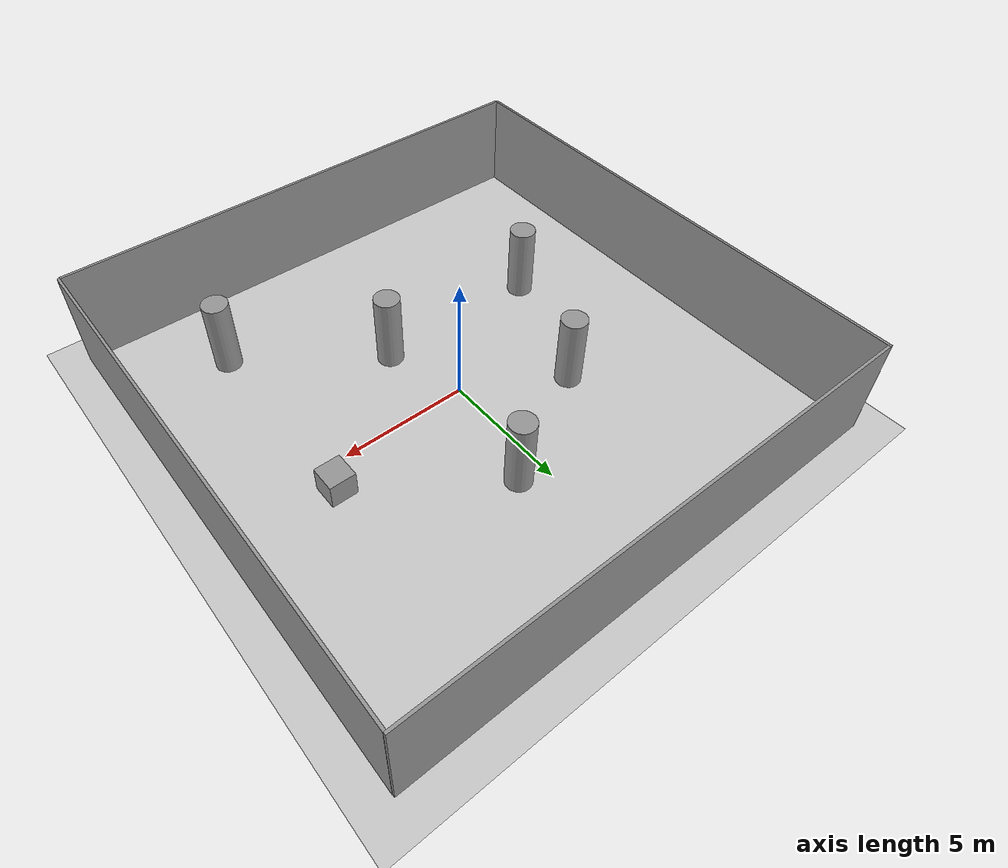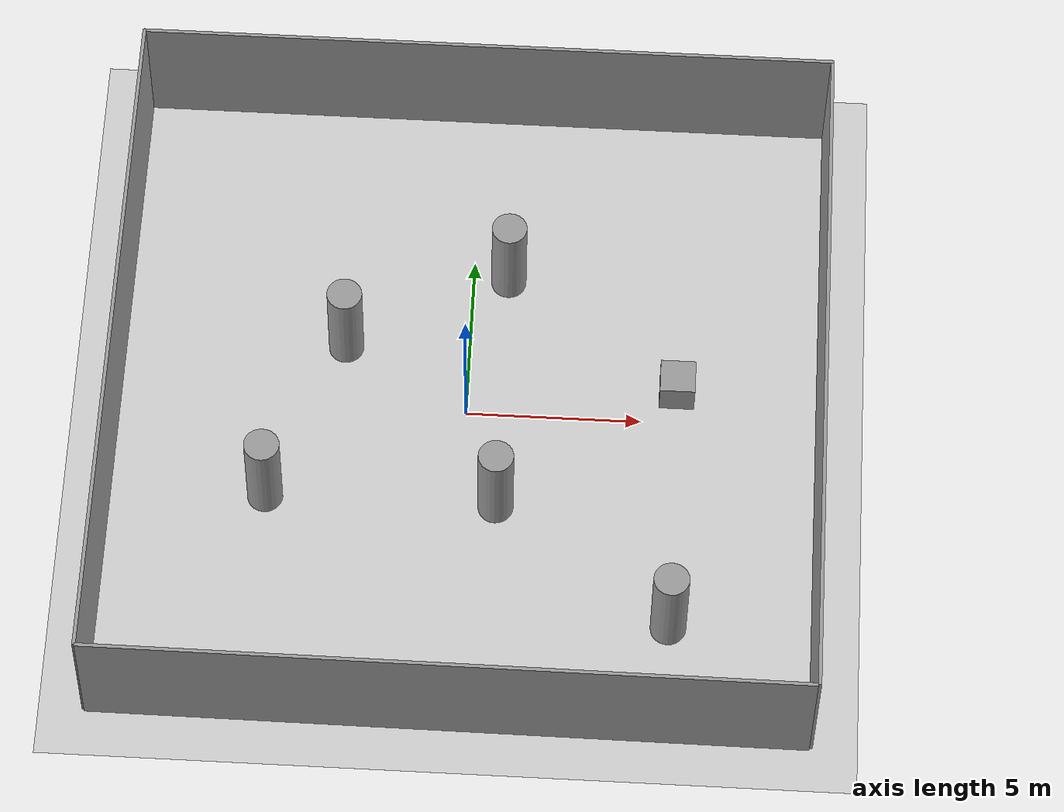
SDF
<sdf version="1.6">
 <world name="default">
  <light name="sun" type="directional">
   <pose>0 0 10 0 -0 0</pose>
   <diffuse>0.8 0.8 0.8 1</diffuse>
   <specular>0.1 0.1 0.1 1</specular>
   <attenuation>
    <range>1000</range>
    <constant>0.9</constant>
    <linear>0.01</linear>
    <quadratic>0.001</quadratic>
   </attenuation>
   <direction>-0.5 0.5 -1</direction>
  </light>
  <model name="ground_plane">
   <static>1</static>
   <link name="link">
    <collision name="collision">
     <geometry><plane><normal>0 0 1</normal><size>100 100</size></plane></geometry>
     <surface><friction><ode><mu>100</mu><mu2>50</mu2></ode></friction></surface>
    </collision>
    <visual name="visual">
     <cast_shadows>0</cast_shadows>
     <geometry><plane><normal>0 0 1</normal><size>100 100</size></plane></geometry>
     <material>
      <script><uri>file://media/materials/scripts/gazebo.material</uri><name>Gazebo/Grey</name></script>
     </material>
    </visual>
   </link>
  </model>
  <gravity>0 0 -9.8</gravity>
  <magnetic_field>6e-06 2.3e-05 -4.2e-05</magnetic_field>
  <atmosphere type="adiabatic"/>
  <physics name="default_physics" default="0" type="ode">
   <max_step_size>0.001</max_step_size>
   <real_time_factor>1</real_time_factor>
   <real_time_update_rate>1000</real_time_update_rate>
  </physics>
  <scene><ambient>0.4 0.4 0.4 1</ambient><background>0.7 0.7 0.7 1</background><shadows>1</shadows></scene>
  <spherical_coordinates>
   <surface_model>EARTH_WGS84</surface_model>
   <latitude_deg>0</latitude_deg>
   <longitude_deg>0</longitude_deg>
   <elevation>0</elevation>
   <heading_deg>0</heading_deg>
  </spherical_coordinates>
  <model name="wall_3">
   <link name="link">
    <inertial>
     <mass>1</mass>
     <inertia>
      <ixx>0.166667</ixx>
      <ixy>0</ixy>
      <ixz>0</ixz>
      <iyy>0.166667</iyy>
      <iyz>0</iyz>
      <izz>0.166667</izz>
     </inertia>
    </inertial>
    <visual name="visual">
     <geometry><box><size>20 0.1 4</size></box></geometry>
     <material>
      <script><name>Gazebo/Grey</name><uri>file://media/materials/scripts/gazebo.material</uri></script>
      <ambient>0.3 0.3 0.3 1</ambient>
      <diffuse>0.7 0.7 0.7 1</diffuse>
      <specular>0.01 0.01 0.01 1</specular>
      <emissive>0 0 0 1</emissive>
      <shader type="vertex"><normal_map>__default__</normal_map></shader>
     </material>
     <pose>0 0 2 0 -0 0</pose>
    </visual>
    <collision name="collision">
     <pose>0 0 2 0 -0 0</pose>
     <geometry><box><size>20 0.1 4</size></box></geometry>
     <surface>
      <friction>
       <ode><mu>1</mu><mu2>1</mu2><fdir1>0 0 0</fdir1><slip1>0</slip1><slip2>0</slip2></ode>
       <torsional>
        <coefficient>1</coefficient>
        <patch_radius>0</patch_radius>
        <surface_radius>0</surface_radius>
        <use_patch_radius>1</use_patch_radius>
        <ode><slip>0</slip></ode>
       </torsional>
      </friction>
      <bounce><restitution_coefficient>0</restitution_coefficient><threshold>1e+06</threshold></bounce>
      <contact>
       <collide_without_contact>0</collide_without_contact>
       <collide_without_contact_bitmask>1</collide_without_contact_bitmask>
       <collide_bitmask>1</collide_bitmask>
       <ode>
        <soft_cfm>0</soft_cfm>
        <soft_erp>0.2</soft_erp>
        <kp>1e+13</kp>
        <kd>1</kd>
        <max_vel>0.01</max_vel>
        <min_depth>0</min_depth>
       </ode>
       <bullet>
        <split_impulse>1</split_impulse>
        <split_impulse_penetration_threshold>-0.01</split_impulse_penetration_threshold>
        <soft_cfm>0</soft_cfm>
        <soft_erp>0.2</soft_erp>
        <kp>1e+13</kp>
        <kd>1</kd>
       </bullet>
      </contact>
     </surface>
    </collision>
   </link>
   <link name="link_1">
    <pose>-5.56231 6.97898 0 -4e-06 -1e-05 0.004611</pose>
    <inertial>
     <mass>1</mass>
     <inertia><ixx>0.145833</ixx><ixy>0</ixy><ixz>0</ixz><iyy>0.145833</iyy><iyz>0</iyz><izz>0.125</izz></inertia>
    </inertial>
    <visual name="visual">
     <pose>0 0 1.5 0 -0 0</pose>
     <geometry><cylinder><radius>0.5</radius><length>3</length></cylinder></geometry>
     <material>
      <lighting>1</lighting>
      <script><uri>file://media/materials/scripts/gazebo.material</uri><name>Gazebo/Grey</name></script>
      <ambient>0.3 0.3 0.3 1</ambient>
      <diffuse>0.7 0.7 0.7 1</diffuse>
      <specular>0.01 0.01 0.01 1</specular>
      <emissive>0 0 0 1</emissive>
      <shader type="vertex"><normal_map>__default__</normal_map></shader>
     </material>
    </visual>
    <collision name="collision">
     <pose>0 0 1.5 0 -0 0</pose>
     <geometry><cylinder><radius>0.5</radius><length>3</length></cylinder></geometry>
     <surface>
      <friction>
       <ode><mu>1</mu><mu2>1</mu2><fdir1>0 0 0</fdir1><slip1>0</slip1><slip2>0</slip2></ode>
       <torsional>
        <coefficient>1</coefficient>
        <patch_radius>0</patch_radius>
        <surface_radius>0</surface_radius>
        <use_patch_radius>1</use_patch_radius>
        <ode><slip>0</slip></ode>
       </torsional>
      </friction>
      <bounce><restitution_coefficient>0</restitution_coefficient><threshold>1e+06</threshold></bounce>
      <contact>
       <collide_without_contact>0</collide_without_contact>
       <collide_without_contact_bitmask>1</collide_without_contact_bitmask>
       <collide_bitmask>1</collide_bitmask>
       <ode>
        <soft_cfm>0</soft_cfm>
        <soft_erp>0.2</soft_erp>
        <kp>1e+13</kp>
        <kd>1</kd>
        <max_vel>0.01</max_vel>
        <min_depth>0</min_depth>
       </ode>
       <bullet>
        <split_impulse>1</split_impulse>
        <split_impulse_penetration_threshold>-0.01</split_impulse_penetration_threshold>
        <soft_cfm>0</soft_cfm>
        <soft_erp>0.2</soft_erp>
        <kp>1e+13</kp>
        <kd>1</kd>
       </bullet>
      </contact>
     </surface>
    </collision>
   </link>
   <link name="link_1_clone">
    <pose>-3.61796 11.988 -8.5e-05 -8e-06 -2e-05 0.009222</pose>
    <inertial>
     <mass>1</mass>
     <inertia><ixx>0.145833</ixx><ixy>0</ixy><ixz>0</ixz><iyy>0.145833</iyy><iyz>0</iyz><izz>0.125</izz></inertia>
    </inertial>
    <visual name="visual">
     <pose>0 0 1.5 0 -0 0</pose>
     <geometry><cylinder><radius>0.5</radius><length>3</length></cylinder></geometry>
     <material>
      <lighting>1</lighting>
      <script><uri>file://media/materials/scripts/gazebo.material</uri><name>Gazebo/Grey</name></script>
      <ambient>0.3 0.3 0.3 1</ambient>
      <diffuse>0.7 0.7 0.7 1</diffuse>
      <specular>0.01 0.01 0.01 1</specular>
      <emissive>0 0 0 1</emissive>
      <shader type="vertex"><normal_map>__default__</normal_map></shader>
     </material>
    </visual>
    <collision name="collision">
     <pose>0 0 1.5 0 -0 0</pose>
     <geometry><cylinder><radius>0.5</radius><length>3</length></cylinder></geometry>
     <surface>
      <friction>
       <ode><mu>1</mu><mu2>1</mu2><fdir1>0 0 0</fdir1><slip1>0</slip1><slip2>0</slip2></ode>
       <torsional>
        <coefficient>1</coefficient>
        <patch_radius>0</patch_radius>
        <surface_radius>0</surface_radius>
        <use_patch_radius>1</use_patch_radius>
        <ode><slip>0</slip></ode>
       </torsional>
      </friction>
      <bounce><restitution_coefficient>0</restitution_coefficient><threshold>1e+06</threshold></bounce>
      <contact>
       <collide_without_contact>0</collide_without_contact>
       <collide_without_contact_bitmask>1</collide_without_contact_bitmask>
       <collide_bitmask>1</collide_bitmask>
       <ode>
        <soft_cfm>0</soft_cfm>
        <soft_erp>0.2</soft_erp>
        <kp>1e+13</kp>
        <kd>1</kd>
        <max_vel>0.01</max_vel>
        <min_depth>0</min_depth>
       </ode>
       <bullet>
        <split_impulse>1</split_impulse>
        <split_impulse_penetration_threshold>-0.01</split_impulse_penetration_threshold>
        <soft_cfm>0</soft_cfm>
        <soft_erp>0.2</soft_erp>
        <kp>1e+13</kp>
        <kd>1</kd>
       </bullet>
      </contact>
     </surface>
    </collision>
   </link>
   <link name="link_1_clone_0">
    <pose>0.967594 7.00908 -1.8e-05 -8e-06 -2e-05 0.009222</pose>
    <inertial>
     <mass>1</mass>
     <inertia><ixx>0.145833</ixx><ixy>0</ixy><ixz>0</ixz><iyy>0.145833</iyy><iyz>0</iyz><izz>0.125</izz></inertia>
    </inertial>
    <visual name="visual">
     <pose>0 0 1.5 0 -0 0</pose>
     <geometry><cylinder><radius>0.5</radius><length>3</length></cylinder></geometry>
     <material>
      <lighting>1</lighting>
      <script><uri>file://media/materials/scripts/gazebo.material</uri><name>Gazebo/Grey</name></script>
      <ambient>0.3 0.3 0.3 1</ambient>
      <diffuse>0.7 0.7 0.7 1</diffuse>
      <specular>0.01 0.01 0.01 1</specular>
      <emissive>0 0 0 1</emissive>
      <shader type="vertex"><normal_map>__default__</normal_map></shader>
     </material>
    </visual>
    <collision name="collision">
     <pose>0 0 1.5 0 -0 0</pose>
     <geometry><cylinder><radius>0.5</radius><length>3</length></cylinder></geometry>
     <surface>
      <friction>
       <ode><mu>1</mu><mu2>1</mu2><fdir1>0 0 0</fdir1><slip1>0</slip1><slip2>0</slip2></ode>
       <torsional>
        <coefficient>1</coefficient>
        <patch_radius>0</patch_radius>
        <surface_radius>0</surface_radius>
        <use_patch_radius>1</use_patch_radius>
        <ode><slip>0</slip></ode>
       </torsional>
      </friction>
      <bounce><restitution_coefficient>0</restitution_coefficient><threshold>1e+06</threshold></bounce>
      <contact>
       <collide_without_contact>0</collide_without_contact>
       <collide_without_contact_bitmask>1</collide_without_contact_bitmask>
       <collide_bitmask>1</collide_bitmask>
       <ode>
        <soft_cfm>0</soft_cfm>
        <soft_erp>0.2</soft_erp>
        <kp>1e+13</kp>
        <kd>1</kd>
        <max_vel>0.01</max_vel>
        <min_depth>0</min_depth>
       </ode>
       <bullet>
        <split_impulse>1</split_impulse>
        <split_impulse_penetration_threshold>-0.01</split_impulse_penetration_threshold>
        <soft_cfm>0</soft_cfm>
        <soft_erp>0.2</soft_erp>
        <kp>1e+13</kp>
        <kd>1</kd>
       </bullet>
      </contact>
     </surface>
    </collision>
   </link>
   <link name="link_1_clone_1">
    <pose>0.933304 14.4455 -4.9e-05 -8e-06 -2e-05 0.009222</pose>
    <inertial>
     <mass>1</mass>
     <inertia><ixx>0.145833</ixx><ixy>0</ixy><ixz>0</ixz><iyy>0.145833</iyy><iyz>0</iyz><izz>0.125</izz></inertia>
    </inertial>
    <visual name="visual">
     <pose>0 0 1.5 0 -0 0</pose>
     <geometry><cylinder><radius>0.5</radius><length>3</length></cylinder></geometry>
     <material>
      <lighting>1</lighting>
      <script><uri>file://media/materials/scripts/gazebo.material</uri><name>Gazebo/Grey</name></script>
      <ambient>0.3 0.3 0.3 1</ambient>
      <diffuse>0.7 0.7 0.7 1</diffuse>
      <specular>0.01 0.01 0.01 1</specular>
      <emissive>0 0 0 1</emissive>
      <shader type="vertex"><normal_map>__default__</normal_map></shader>
     </material>
    </visual>
    <collision name="collision">
     <pose>0 0 1.5 0 -0 0</pose>
     <geometry><cylinder><radius>0.5</radius><length>3</length></cylinder></geometry>
     <surface>
      <friction>
       <ode><mu>1</mu><mu2>1</mu2><fdir1>0 0 0</fdir1><slip1>0</slip1><slip2>0</slip2></ode>
       <torsional>
        <coefficient>1</coefficient>
        <patch_radius>0</patch_radius>
        <surface_radius>0</surface_radius>
        <use_patch_radius>1</use_patch_radius>
        <ode><slip>0</slip></ode>
       </torsional>
      </friction>
      <bounce><restitution_coefficient>0</restitution_coefficient><threshold>1e+06</threshold></bounce>
      <contact>
       <collide_without_contact>0</collide_without_contact>
       <collide_without_contact_bitmask>1</collide_without_contact_bitmask>
       <collide_bitmask>1</collide_bitmask>
       <ode>
        <soft_cfm>0</soft_cfm>
        <soft_erp>0.2</soft_erp>
        <kp>1e+13</kp>
        <kd>1</kd>
        <max_vel>0.01</max_vel>
        <min_depth>0</min_depth>
       </ode>
       <bullet>
        <split_impulse>1</split_impulse>
        <split_impulse_penetration_threshold>-0.01</split_impulse_penetration_threshold>
        <soft_cfm>0</soft_cfm>
        <soft_erp>0.2</soft_erp>
        <kp>1e+13</kp>
        <kd>1</kd>
       </bullet>
      </contact>
     </surface>
    </collision>
   </link>
   <link name="link_1_clone_2">
    <pose>5.98402 3.45843 4.7e-05 -8e-06 -2e-05 0.009222</pose>
    <inertial>
     <mass>1</mass>
     <inertia><ixx>0.145833</ixx><ixy>0</ixy><ixz>0</ixz><iyy>0.145833</iyy><iyz>0</iyz><izz>0.125</izz></inertia>
    </inertial>
    <visual name="visual">
     <pose>0 0 1.5 0 -0 0</pose>
     <geometry><cylinder><radius>0.5</radius><length>3</length></cylinder></geometry>
     <material>
      <lighting>1</lighting>
      <script><uri>file://media/materials/scripts/gazebo.material</uri><name>Gazebo/Grey</name></script>
      <ambient>0.3 0.3 0.3 1</ambient>
      <diffuse>0.7 0.7 0.7 1</diffuse>
      <specular>0.01 0.01 0.01 1</specular>
      <emissive>0 0 0 1</emissive>
      <shader type="vertex"><normal_map>__default__</normal_map></shader>
     </material>
    </visual>
    <collision name="collision">
     <pose>0 0 1.5 0 -0 0</pose>
     <geometry><cylinder><radius>0.5</radius><length>3</length></cylinder></geometry>
     <surface>
      <friction>
       <ode><mu>1</mu><mu2>1</mu2><fdir1>0 0 0</fdir1><slip1>0</slip1><slip2>0</slip2></ode>
       <torsional>
        <coefficient>1</coefficient>
        <patch_radius>0</patch_radius>
        <surface_radius>0</surface_radius>
        <use_patch_radius>1</use_patch_radius>
        <ode><slip>0</slip></ode>
       </torsional>
      </friction>
      <bounce><restitution_coefficient>0</restitution_coefficient><threshold>1e+06</threshold></bounce>
      <contact>
       <collide_without_contact>0</collide_without_contact>
       <collide_without_contact_bitmask>1</collide_without_contact_bitmask>
       <collide_bitmask>1</collide_bitmask>
       <ode>
        <soft_cfm>0</soft_cfm>
        <soft_erp>0.2</soft_erp>
        <kp>1e+13</kp>
        <kd>1</kd>
        <max_vel>0.01</max_vel>
        <min_depth>0</min_depth>
       </ode>
       <bullet>
        <split_impulse>1</split_impulse>
        <split_impulse_penetration_threshold>-0.01</split_impulse_penetration_threshold>
        <soft_cfm>0</soft_cfm>
        <soft_erp>0.2</soft_erp>
        <kp>1e+13</kp>
        <kd>1</kd>
       </bullet>
      </contact>
     </surface>
    </collision>
   </link>
   <link name="link_2">
    <pose>5.94909 11.0321 0.50012 -4e-06 -1e-05 0.004611</pose>
    <inertial>
     <mass>1</mass>
     <inertia>
      <ixx>0.166667</ixx>
      <ixy>0</ixy>
      <ixz>0</ixz>
      <iyy>0.166667</iyy>
      <iyz>0</iyz>
      <izz>0.166667</izz>
     </inertia>
    </inertial>
    <visual name="visual">
     <geometry><box><size>1 1 1</size></box></geometry>
     <material>
      <lighting>1</lighting>
      <script><uri>file://media/materials/scripts/gazebo.material</uri><name>Gazebo/Grey</name></script>
      <ambient>0.3 0.3 0.3 1</ambient>
      <diffuse>0.7 0.7 0.7 1</diffuse>
      <specular>0.01 0.01 0.01 1</specular>
      <emissive>0 0 0 1</emissive>
     </material>
    </visual>
    <collision name="collision">
     <geometry><box><size>1 1 1</size></box></geometry>
     <surface>
      <friction>
       <ode><mu>1</mu><mu2>1</mu2><fdir1>0 0 0</fdir1><slip1>0</slip1><slip2>0</slip2></ode>
       <torsional>
        <coefficient>1</coefficient>
        <patch_radius>0</patch_radius>
        <surface_radius>0</surface_radius>
        <use_patch_radius>1</use_patch_radius>
        <ode><slip>0</slip></ode>
       </torsional>
      </friction>
      <bounce><restitution_coefficient>0</restitution_coefficient><threshold>1e+06</threshold></bounce>
      <contact>
       <collide_without_contact>0</collide_without_contact>
       <collide_without_contact_bitmask>1</collide_without_contact_bitmask>
       <collide_bitmask>1</collide_bitmask>
       <ode>
        <soft_cfm>0</soft_cfm>
        <soft_erp>0.2</soft_erp>
        <kp>1e+13</kp>
        <kd>1</kd>
        <max_vel>0.01</max_vel>
        <min_depth>0</min_depth>
       </ode>
       <bullet>
        <split_impulse>1</split_impulse>
        <split_impulse_penetration_threshold>-0.01</split_impulse_penetration_threshold>
        <soft_cfm>0</soft_cfm>
        <soft_erp>0.2</soft_erp>
        <kp>1e+13</kp>
        <kd>1</kd>
       </bullet>
      </contact>
     </surface>
    </collision>
   </link>
   <link name="link_clone">
    <pose>-0 20 -0 -4e-06 -1e-05 0.004611</pose>
    <inertial>
     <mass>1</mass>
     <inertia>
      <ixx>0.166667</ixx>
      <ixy>0</ixy>
      <ixz>0</ixz>
      <iyy>0.166667</iyy>
      <iyz>0</iyz>
      <izz>0.166667</izz>
     </inertia>
    </inertial>
    <visual name="visual">
     <geometry><box><size>20 0.1 4</size></box></geometry>
     <material>
      <script><name>Gazebo/Grey</name><uri>file://media/materials/scripts/gazebo.material</uri></script>
      <ambient>0.3 0.3 0.3 1</ambient>
      <diffuse>0.7 0.7 0.7 1</diffuse>
      <specular>0.01 0.01 0.01 1</specular>
      <emissive>0 0 0 1</emissive>
      <shader type="vertex"><normal_map>__default__</normal_map></shader>
     </material>
     <pose>0 0 2 0 -0 0</pose>
    </visual>
    <collision name="collision">
     <pose>0 0 2 0 -0 0</pose>
     <geometry><box><size>20 0.1 4</size></box></geometry>
     <surface>
      <friction>
       <ode><mu>1</mu><mu2>1</mu2><fdir1>0 0 0</fdir1><slip1>0</slip1><slip2>0</slip2></ode>
       <torsional>
        <coefficient>1</coefficient>
        <patch_radius>0</patch_radius>
        <surface_radius>0</surface_radius>
        <use_patch_radius>1</use_patch_radius>
        <ode><slip>0</slip></ode>
       </torsional>
      </friction>
      <bounce><restitution_coefficient>0</restitution_coefficient><threshold>1e+06</threshold></bounce>
      <contact>
       <collide_without_contact>0</collide_without_contact>
       <collide_without_contact_bitmask>1</collide_without_contact_bitmask>
       <collide_bitmask>1</collide_bitmask>
       <ode>
        <soft_cfm>0</soft_cfm>
        <soft_erp>0.2</soft_erp>
        <kp>1e+13</kp>
        <kd>1</kd>
        <max_vel>0.01</max_vel>
        <min_depth>0</min_depth>
       </ode>
       <bullet>
        <split_impulse>1</split_impulse>
        <split_impulse_penetration_threshold>-0.01</split_impulse_penetration_threshold>
        <soft_cfm>0</soft_cfm>
        <soft_erp>0.2</soft_erp>
        <kp>1e+13</kp>
        <kd>1</kd>
       </bullet>
      </contact>
     </surface>
    </collision>
   </link>
   <link name="link_clone_0">
    <pose>-10 10 -0 -4e-06 -1e-05 1.57</pose>
    <inertial>
     <mass>1</mass>
     <inertia>
      <ixx>0.166667</ixx>
      <ixy>0</ixy>
      <ixz>0</ixz>
      <iyy>0.166667</iyy>
      <iyz>0</iyz>
      <izz>0.166667</izz>
     </inertia>
    </inertial>
    <visual name="visual">
     <geometry><box><size>20 0.1 4</size></box></geometry>
     <material>
      <script><name>Gazebo/Grey</name><uri>file://media/materials/scripts/gazebo.material</uri></script>
      <ambient>0.3 0.3 0.3 1</ambient>
      <diffuse>0.7 0.7 0.7 1</diffuse>
      <specular>0.01 0.01 0.01 1</specular>
      <emissive>0 0 0 1</emissive>
      <shader type="vertex"><normal_map>__default__</normal_map></shader>
     </material>
     <pose>0 0 2 0 -0 0</pose>
    </visual>
    <collision name="collision">
     <pose>0 0 2 0 -0 0</pose>
     <geometry><box><size>20 0.1 4</size></box></geometry>
     <surface>
      <friction>
       <ode><mu>1</mu><mu2>1</mu2><fdir1>0 0 0</fdir1><slip1>0</slip1><slip2>0</slip2></ode>
       <torsional>
        <coefficient>1</coefficient>
        <patch_radius>0</patch_radius>
        <surface_radius>0</surface_radius>
        <use_patch_radius>1</use_patch_radius>
        <ode><slip>0</slip></ode>
       </torsional>
      </friction>
      <bounce><restitution_coefficient>0</restitution_coefficient><threshold>1e+06</threshold></bounce>
      <contact>
       <collide_without_contact>0</collide_without_contact>
       <collide_without_contact_bitmask>1</collide_without_contact_bitmask>
       <collide_bitmask>1</collide_bitmask>
       <ode>
        <soft_cfm>0</soft_cfm>
        <soft_erp>0.2</soft_erp>
        <kp>1e+13</kp>
        <kd>1</kd>
        <max_vel>0.01</max_vel>
        <min_depth>0</min_depth>
       </ode>
       <bullet>
        <split_impulse>1</split_impulse>
        <split_impulse_penetration_threshold>-0.01</split_impulse_penetration_threshold>
        <soft_cfm>0</soft_cfm>
        <soft_erp>0.2</soft_erp>
        <kp>1e+13</kp>
        <kd>1</kd>
       </bullet>
      </contact>
     </surface>
    </collision>
   </link>
   <link name="link_clone_0_clone">
    <pose>10 10 -5.5e-05 -1.4e-05 -6e-06 1.57461</pose>
    <inertial>
     <mass>1</mass>
     <inertia>
      <ixx>0.166667</ixx>
      <ixy>0</ixy>
      <ixz>0</ixz>
      <iyy>0.166667</iyy>
      <iyz>0</iyz>
      <izz>0.166667</izz>
     </inertia>
    </inertial>
    <visual name="visual">
     <geometry><box><size>20 0.1 4</size></box></geometry>
     <material>
      <script><name>Gazebo/Grey</name><uri>file://media/materials/scripts/gazebo.material</uri></script>
      <ambient>0.3 0.3 0.3 1</ambient>
      <diffuse>0.7 0.7 0.7 1</diffuse>
      <specular>0.01 0.01 0.01 1</specular>
      <emissive>0 0 0 1</emissive>
      <shader type="vertex"><normal_map>__default__</normal_map></shader>
     </material>
     <pose>0 0 2 0 -0 0</pose>
    </visual>
    <collision name="collision">
     <pose>0 0 2 0 -0 0</pose>
     <geometry><box><size>20 0.1 4</size></box></geometry>
     <surface>
      <friction>
       <ode><mu>1</mu><mu2>1</mu2><fdir1>0 0 0</fdir1><slip1>0</slip1><slip2>0</slip2></ode>
       <torsional>
        <coefficient>1</coefficient>
        <patch_radius>0</patch_radius>
        <surface_radius>0</surface_radius>
        <use_patch_radius>1</use_patch_radius>
        <ode><slip>0</slip></ode>
       </torsional>
      </friction>
      <bounce><restitution_coefficient>0</restitution_coefficient><threshold>1e+06</threshold></bounce>
      <contact>
       <collide_without_contact>0</collide_without_contact>
       <collide_without_contact_bitmask>1</collide_without_contact_bitmask>
       <collide_bitmask>1</collide_bitmask>
       <ode>
        <soft_cfm>0</soft_cfm>
        <soft_erp>0.2</soft_erp>
        <kp>1e+13</kp>
        <kd>1</kd>
        <max_vel>0.01</max_vel>
        <min_depth>0</min_depth>
       </ode>
       <bullet>
        <split_impulse>1</split_impulse>
        <split_impulse_penetration_threshold>-0.01</split_impulse_penetration_threshold>
        <soft_cfm>0</soft_cfm>
        <soft_erp>0.2</soft_erp>
        <kp>1e+13</kp>
        <kd>1</kd>
       </bullet>
      </contact>
     </surface>
    </collision>
   </link>
   <static>1</static>
   <pose>9.6e-05 -10.0045 -0.000102 4e-06 1e-05 -0.004611</pose>
  </model>
 </world>
</sdf>
